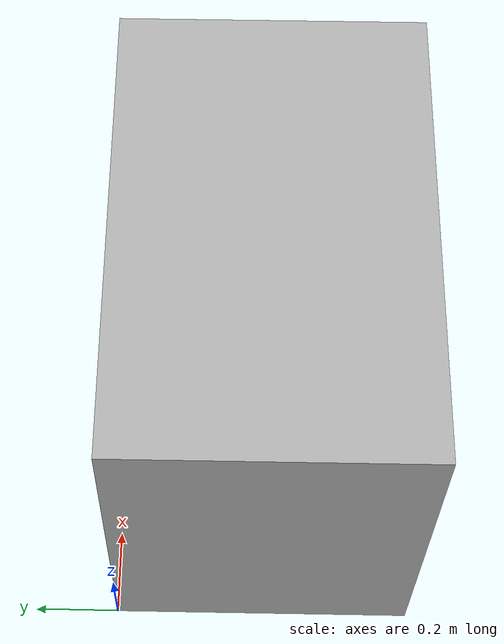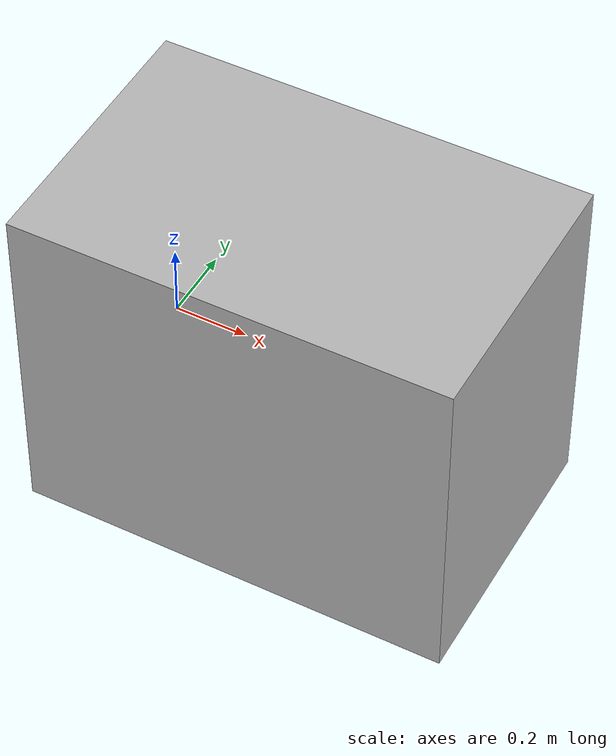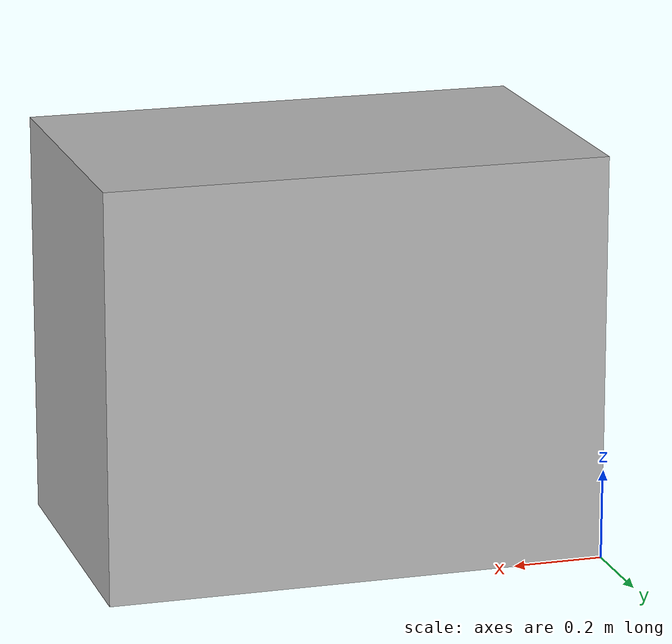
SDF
<?xml version="1.0"?>
<sdf version="1.6">
  <model name="obstacle_05">
    <static>true</static>

    <link name="link_05">
      <pose frame=''>0.55 -0.35 0.45 0 -0 0</pose>
      <collision name="body_collision">
        <geometry>
          <box>
            <size>1.10 0.70 0.90</size>
          </box>
        </geometry>
      </collision>

      <visual name="visual_05">
	<pose frame=''>0 0 0 0 -0 0</pose>
        <geometry>
          <box>
            <size>1.10 0.70 0.90</size>
          </box>
	</geometry>

	    <material>
		<script>
			<uri>model://obstacle_05/materials/scripts</uri>
			<uri>model://obstacle_05/materials/textures</uri>
			<name>repeated_05</name>
		</script>
	    </material>

      </visual>

    </link>

  </model>
</sdf>
